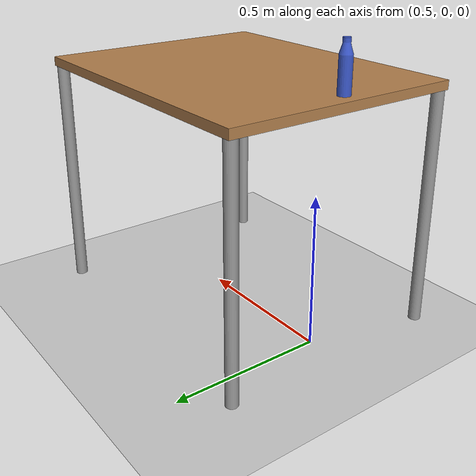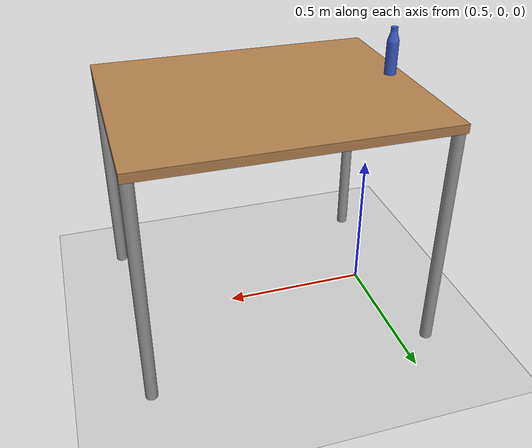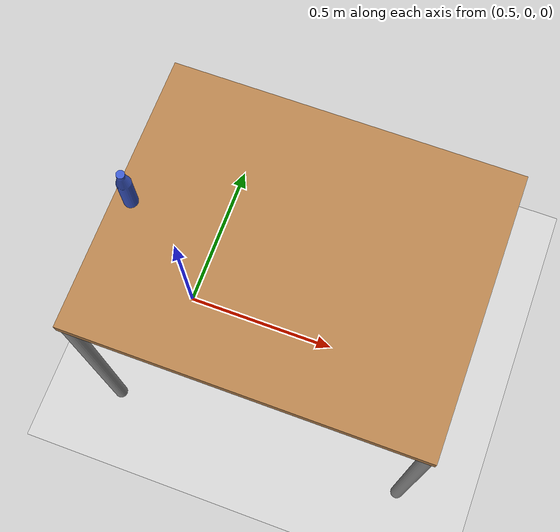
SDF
<sdf version="1.4">
 <world name="default">
  <physics name="default_physics" default="0" type="ode">
   <max_step_size>0.001</max_step_size>
   <real_time_factor>1</real_time_factor>
   <real_time_update_rate>1000</real_time_update_rate>
  </physics>
  <scene>
   <ambient>0.4 0.4 0.4 1</ambient>
   <background>0.7 0.7 0.7 1</background>
   <shadows>false</shadows>
   <grid>false</grid>
   <origin_visual>false</origin_visual>
  </scene>
  <light name="light1" type="point">
   <pose>0 0 2.280000 0 0 0</pose>
   <diffuse>0.5 0.5 0.5 1</diffuse>
   <specular>0.1 0.1 0.1 1</specular>
   <attenuation>
    <range>20</range>
    <constant>0.3</constant>
    <linear>0.01</linear>
    <quadratic>0.01</quadratic>
   </attenuation>
   <cast_shadows>0</cast_shadows>
   <direction>0 0 -1</direction>
  </light>
  <include><uri>model://ground_plane</uri></include>
  <include><uri>model://table_0m8</uri><name>table1</name><pose>0.88 0 0 0 0 0</pose></include>
  <include><name>bottle</name><uri>model://bottle</uri><pose>0.43 -0.02 0.817 0 0 0</pose></include>
 </world>
</sdf>

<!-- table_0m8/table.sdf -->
<sdf version="1.4">
<model name='table'>
      <static>1</static>
      <link name='link'>
        <collision name='surface'>
          <pose>0.000000 0.000000 0.800000 0.000000 0.000000 0.000000</pose>
          <geometry>
            <box>
              <size>1.000000 0.800000 0.030000</size>
            </box>
          </geometry>
          <surface>
            <bounce/>
            <friction>
              <ode/>
            </friction>
            <contact>
              <ode/>
            </contact>
          </surface>
        </collision>
        <visual name='visual1'>
          <pose>0.000000 0.000000 0.800000 0.000000 0.000000 0.000000</pose>
          <geometry>
            <box>
              <size>1.000000 0.800000 0.030000</size>
            </box>
          </geometry>
          <material>
            <script>
              <uri>file://media/materials/scripts/gazebo.material</uri>
              <name>Gazebo/Wood</name>
            </script>
          </material>
        </visual>
        <collision name='front_left_leg'>
          <pose>0.480000 0.380000 0.400000 0.000000 0.000000 0.000000</pose>
          <geometry>
            <cylinder>
              <radius>0.020000</radius>
              <length>0.800000</length>
            </cylinder>
          </geometry>
          <surface>
            <bounce/>
            <friction>
              <ode/>
            </friction>
            <contact>
              <ode/>
            </contact>
          </surface>
        </collision>
        <visual name='front_left_leg'>
          <pose>0.480000 0.380000 0.400000 0.000000 0.000000 0.000000</pose>
          <geometry>
            <cylinder>
              <radius>0.020000</radius>
              <length>0.800000</length>
            </cylinder>
          </geometry>
          <material>
            <script>
              <uri>file://media/materials/scripts/gazebo.material</uri>
              <name>Gazebo/Grey</name>
            </script>
          </material>
        </visual>
        <collision name='front_right_leg'>
          <pose>0.480000 -0.380000 0.400000 0.000000 0.000000 0.000000</pose>
          <geometry>
            <cylinder>
              <radius>0.020000</radius>
              <length>0.800000</length>
            </cylinder>
          </geometry>
          <surface>
            <bounce/>
            <friction>
              <ode/>
            </friction>
            <contact>
              <ode/>
            </contact>
          </surface>
        </collision>
        <visual name='front_right_leg'>
          <pose>0.480000 -0.380000 0.400000 0.000000 0.000000 0.000000</pose>
          <geometry>
            <cylinder>
              <radius>0.020000</radius>
              <length>0.800000</length>
            </cylinder>
          </geometry>
          <material>
            <script>
              <uri>file://media/materials/scripts/gazebo.material</uri>
              <name>Gazebo/Grey</name>
            </script>
          </material>
        </visual>
        <collision name='back_right_leg'>
          <pose>-0.480000 -0.380000 0.400000 0.000000 0.000000 0.000000</pose>
          <geometry>
            <cylinder>
              <radius>0.020000</radius>
              <length>0.800000</length>
            </cylinder>
          </geometry>
          <surface>
            <bounce/>
            <friction>
              <ode/>
            </friction>
            <contact>
              <ode/>
            </contact>
          </surface>
        </collision>
        <visual name='back_right_leg'>
          <pose>-0.480000 -0.380000 0.400000 0.000000 0.000000 0.000000</pose>
          <geometry>
            <cylinder>
              <radius>0.020000</radius>
              <length>0.800000</length>
            </cylinder>
          </geometry>
          <material>
            <script>
              <uri>file://media/materials/scripts/gazebo.material</uri>
              <name>Gazebo/Grey</name>
            </script>
          </material>
        </visual>
        <collision name='back_left_leg'>
          <pose>-0.480000 0.380000 0.400000 0.000000 0.000000 0.000000</pose>
          <geometry>
            <cylinder>
              <radius>0.020000</radius>
              <length>0.800000</length>
            </cylinder>
          </geometry>
          <surface>
            <bounce/>
            <friction>
              <ode/>
            </friction>
            <contact>
              <ode/>
            </contact>
          </surface>
        </collision>
        <visual name='back_left_leg'>
          <pose>-0.480000 0.380000 0.400000 0.000000 0.000000 0.000000</pose>
          <geometry>
            <cylinder>
              <radius>0.020000</radius>
              <length>0.800000</length>
            </cylinder>
          </geometry>
          <material>
            <script>
              <uri>file://media/materials/scripts/gazebo.material</uri>
              <name>Gazebo/Grey</name>
            </script>
          </material>
        </visual>
        <velocity_decay>
          <linear>0.000000</linear>
          <angular>0.000000</angular>
        </velocity_decay>
        <self_collide>0</self_collide>
        <kinematic>0</kinematic>
        <gravity>1</gravity>
      </link>
    </model>
</sdf>

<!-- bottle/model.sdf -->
<sdf version='1.6'>
  <model name='bottle'>
    <link name='link_0'>
      <inertial>
        <mass>0.1</mass>
        <inertia>
          <ixx>0.002436</ixx>
          <ixy>0</ixy>
          <ixz>0</ixz>
          <iyy>0.002436</iyy>
          <iyz>0</iyz>
          <izz>0.001604</izz>
        </inertia>
        <pose>0 0 0.086433 0 -0 0</pose>
      </inertial>
      <pose>0 0 0 0 -0 0</pose>
      <gravity>1</gravity>
      <self_collide>0</self_collide>
      <kinematic>0</kinematic>
      <enable_wind>0</enable_wind>
      <visual name='visual'>
        <pose>0 0 0 0 -0 0</pose>
        <geometry>
          <mesh>
            <uri>model://bottle/bottle.dae</uri>
            <scale>0.5 0.5 0.8</scale>
          </mesh>
        </geometry>
        <transparency>0</transparency>
        <cast_shadows>1</cast_shadows>
      </visual>
      <collision name='collision'>
        <laser_retro>0</laser_retro>
        <max_contacts>1000</max_contacts>
        <pose>0 0 0 0 -0 0</pose>
        <geometry>
          <mesh>
            <uri>model://bottle/bottle.dae</uri>
            <scale>0.5 0.5 0.8</scale>
          </mesh>
        </geometry>
        <surface>
          <friction>
            <ode>
              <mu>3.0</mu>
              <mu2>1.5</mu2>
            </ode>
          </friction>
        </surface>
      </collision>
    </link>
    <static>0</static>
    <allow_auto_disable>0</allow_auto_disable>
  </model>
</sdf>
